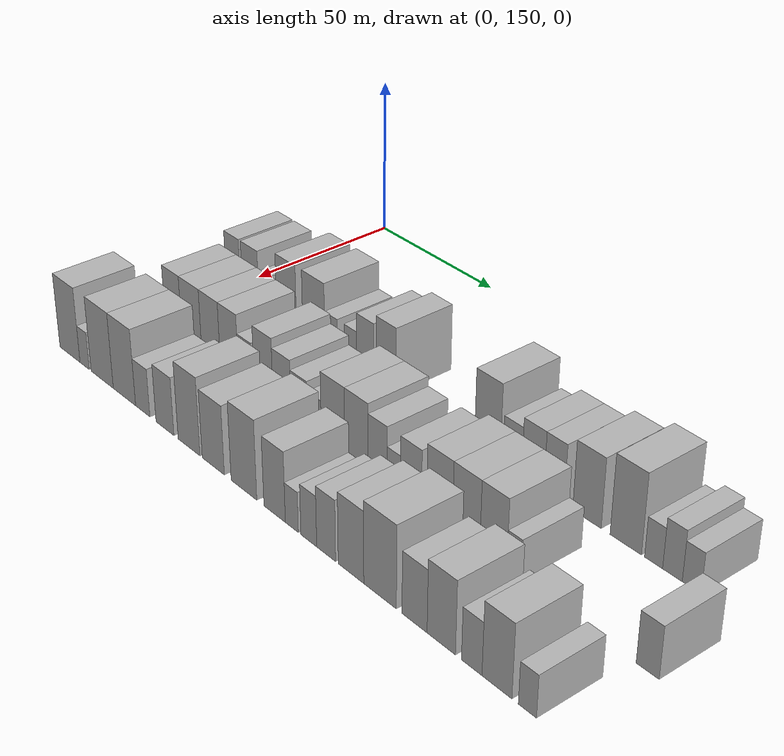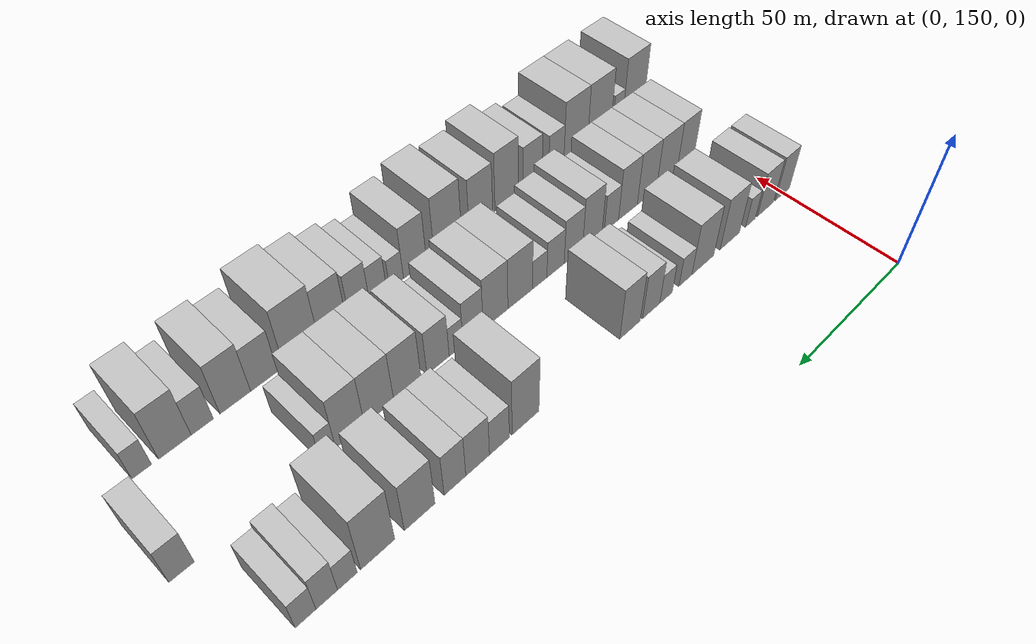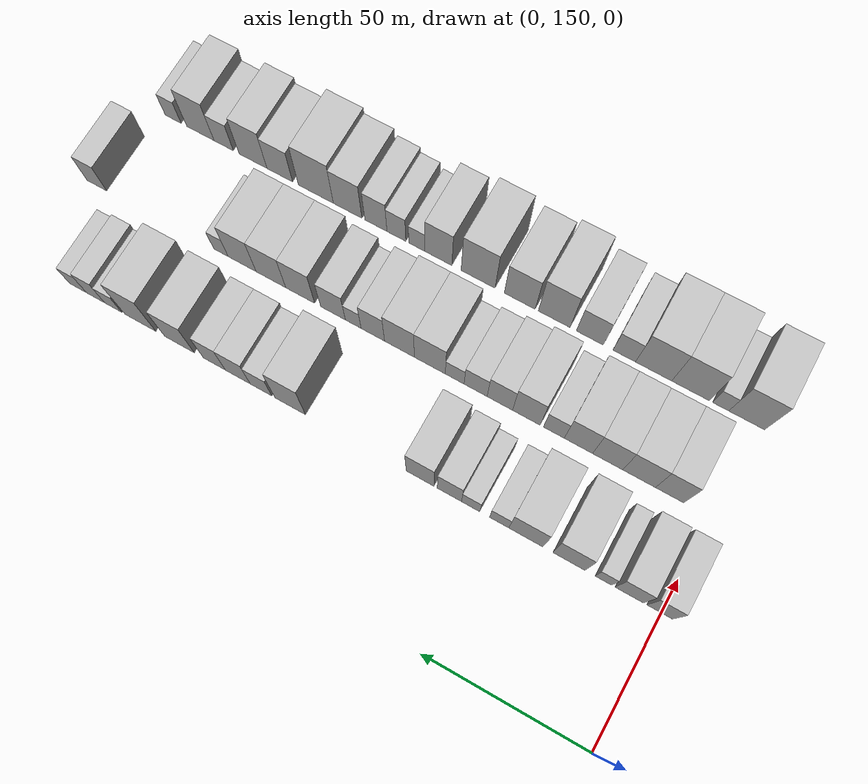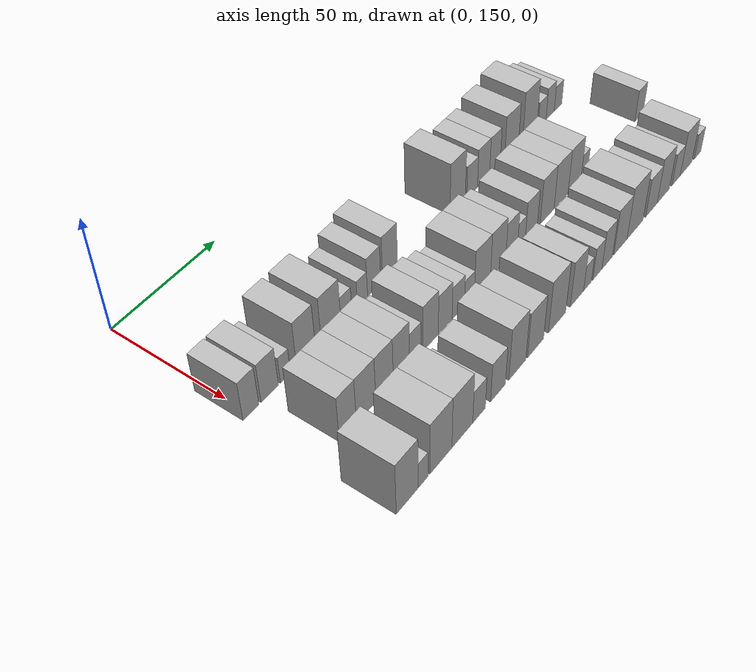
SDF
<sdf version="1.6">
 <world name="default">
  <model name="building_59">
   <static>1</static>
   <pose>50.0000 150.5706 0 0.000000 0.000000 0.000000</pose>
   <link name="link">
    <pose>0 0 9.00 0 0 0</pose>
    <collision name="collision"><geometry><box><size>20.0000 7.4586 18.0000</size></box></geometry></collision>
    <visual name="visual">
     <cast_shadows>0</cast_shadows>
     <geometry><box><size>20.0000 7.4586 18.0000</size></box></geometry>
     <material>
      <script>
       <uri>model://HANNAS_wall/materials/scripts</uri>
       <uri>model://HANNAS_wall/materials/textures</uri>
       <name>vrc/HANNAS_wall</name>
      </script>
     </material>
    </visual>
   </link>
  </model>
  <model name="building_60">
   <static>1</static>
   <pose>50.0000 159.4601 0 0.000000 0.000000 0.000000</pose>
   <link name="link">
    <pose>0 0 9.00 0 0 0</pose>
    <collision name="collision"><geometry><box><size>20.0000 8.3203 18.0000</size></box></geometry></collision>
    <visual name="visual">
     <cast_shadows>0</cast_shadows>
     <geometry><box><size>20.0000 8.3203 18.0000</size></box></geometry>
     <material>
      <script>
       <uri>model://HANNAS_wall/materials/scripts</uri>
       <uri>model://HANNAS_wall/materials/textures</uri>
       <name>vrc/HANNAS_wall</name>
      </script>
     </material>
    </visual>
   </link>
  </model>
  <model name="building_61">
   <static>1</static>
   <pose>50.0000 167.0739 0 0.000000 0.000000 0.000000</pose>
   <link name="link">
    <pose>0 0 6.00 0 0 0</pose>
    <collision name="collision"><geometry><box><size>20.0000 4.9073 12.0000</size></box></geometry></collision>
    <visual name="visual">
     <cast_shadows>0</cast_shadows>
     <geometry><box><size>20.0000 4.9073 12.0000</size></box></geometry>
     <material>
      <script>
       <uri>model://HANNAS_wall/materials/scripts</uri>
       <uri>model://HANNAS_wall/materials/textures</uri>
       <name>vrc/HANNAS_wall</name>
      </script>
     </material>
    </visual>
   </link>
  </model>
  <model name="building_62">
   <static>1</static>
   <pose>50.0000 177.3071 0 0.000000 0.000000 0.000000</pose>
   <link name="link">
    <pose>0 0 10.50 0 0 0</pose>
    <collision name="collision"><geometry><box><size>20.0000 9.5590 21.0000</size></box></geometry></collision>
    <visual name="visual">
     <cast_shadows>0</cast_shadows>
     <geometry><box><size>20.0000 9.5590 21.0000</size></box></geometry>
     <material>
      <script>
       <uri>model://HANNAS_wall/materials/scripts</uri>
       <uri>model://HANNAS_wall/materials/textures</uri>
       <name>vrc/HANNAS_wall</name>
      </script>
     </material>
    </visual>
   </link>
  </model>
  <model name="building_63">
   <static>1</static>
   <pose>50.0000 190.2425 0 0.000000 0.000000 0.000000</pose>
   <link name="link">
    <pose>0 0 10.50 0 0 0</pose>
    <collision name="collision"><geometry><box><size>20.0000 10.3118 21.0000</size></box></geometry></collision>
    <visual name="visual">
     <cast_shadows>0</cast_shadows>
     <geometry><box><size>20.0000 10.3118 21.0000</size></box></geometry>
     <material>
      <script>
       <uri>model://HANNAS_wall/materials/scripts</uri>
       <uri>model://HANNAS_wall/materials/textures</uri>
       <name>vrc/HANNAS_wall</name>
      </script>
     </material>
    </visual>
   </link>
  </model>
  <model name="building_64">
   <static>1</static>
   <pose>50.0000 198.3322 0 0.000000 0.000000 0.000000</pose>
   <link name="link">
    <pose>0 0 6.00 0 0 0</pose>
    <collision name="collision"><geometry><box><size>20.0000 5.8676 12.0000</size></box></geometry></collision>
    <visual name="visual">
     <cast_shadows>0</cast_shadows>
     <geometry><box><size>20.0000 5.8676 12.0000</size></box></geometry>
     <material>
      <script>
       <uri>model://HANNAS_wall/materials/scripts</uri>
       <uri>model://HANNAS_wall/materials/textures</uri>
       <name>vrc/HANNAS_wall</name>
      </script>
     </material>
    </visual>
   </link>
  </model>
  <model name="building_65">
   <static>1</static>
   <pose>50.0000 207.0618 0 0.000000 0.000000 0.000000</pose>
   <link name="link">
    <pose>0 0 6.00 0 0 0</pose>
    <collision name="collision"><geometry><box><size>20.0000 5.5916 12.0000</size></box></geometry></collision>
    <visual name="visual">
     <cast_shadows>0</cast_shadows>
     <geometry><box><size>20.0000 5.5916 12.0000</size></box></geometry>
     <material>
      <script>
       <uri>model://HANNAS_wall/materials/scripts</uri>
       <uri>model://HANNAS_wall/materials/textures</uri>
       <name>vrc/HANNAS_wall</name>
      </script>
     </material>
    </visual>
   </link>
  </model>
  <model name="building_66">
   <static>1</static>
   <pose>50.0000 213.5851 0 0.000000 0.000000 0.000000</pose>
   <link name="link">
    <pose>0 0 9.00 0 0 0</pose>
    <collision name="collision"><geometry><box><size>20.0000 7.4550 18.0000</size></box></geometry></collision>
    <visual name="visual">
     <cast_shadows>0</cast_shadows>
     <geometry><box><size>20.0000 7.4550 18.0000</size></box></geometry>
     <material>
      <script>
       <uri>model://HANNAS_wall/materials/scripts</uri>
       <uri>model://HANNAS_wall/materials/textures</uri>
       <name>vrc/HANNAS_wall</name>
      </script>
     </material>
    </visual>
   </link>
  </model>
  <model name="building_67">
   <static>1</static>
   <pose>50.0000 222.6246 0 0.000000 0.000000 0.000000</pose>
   <link name="link">
    <pose>0 0 10.50 0 0 0</pose>
    <collision name="collision"><geometry><box><size>20.0000 8.6242 21.0000</size></box></geometry></collision>
    <visual name="visual">
     <cast_shadows>0</cast_shadows>
     <geometry><box><size>20.0000 8.6242 21.0000</size></box></geometry>
     <material>
      <script>
       <uri>model://HANNAS_wall/materials/scripts</uri>
       <uri>model://HANNAS_wall/materials/textures</uri>
       <name>vrc/HANNAS_wall</name>
      </script>
     </material>
    </visual>
   </link>
  </model>
  <model name="building_68">
   <static>1</static>
   <pose>50.0000 263.6809 0 0.000000 0.000000 0.000000</pose>
   <link name="link">
    <pose>0 0 12.00 0 0 0</pose>
    <collision name="collision"><geometry><box><size>20.0000 9.8294 24.0000</size></box></geometry></collision>
    <visual name="visual">
     <cast_shadows>0</cast_shadows>
     <geometry><box><size>20.0000 9.8294 24.0000</size></box></geometry>
     <material>
      <script>
       <uri>model://HANNAS_wall/materials/scripts</uri>
       <uri>model://HANNAS_wall/materials/textures</uri>
       <name>vrc/HANNAS_wall</name>
      </script>
     </material>
    </visual>
   </link>
  </model>
  <model name="building_69">
   <static>1</static>
   <pose>50.0000 273.1013 0 0.000000 0.000000 0.000000</pose>
   <link name="link">
    <pose>0 0 7.50 0 0 0</pose>
    <collision name="collision"><geometry><box><size>20.0000 7.0115 15.0000</size></box></geometry></collision>
    <visual name="visual">
     <cast_shadows>0</cast_shadows>
     <geometry><box><size>20.0000 7.0115 15.0000</size></box></geometry>
     <material>
      <script>
       <uri>model://HANNAS_wall/materials/scripts</uri>
       <uri>model://HANNAS_wall/materials/textures</uri>
       <name>vrc/HANNAS_wall</name>
      </script>
     </material>
    </visual>
   </link>
  </model>
  <model name="building_70">
   <static>1</static>
   <pose>50.0000 280.6779 0 0.000000 0.000000 0.000000</pose>
   <link name="link">
    <pose>0 0 9.00 0 0 0</pose>
    <collision name="collision"><geometry><box><size>20.0000 8.1415 18.0000</size></box></geometry></collision>
    <visual name="visual">
     <cast_shadows>0</cast_shadows>
     <geometry><box><size>20.0000 8.1415 18.0000</size></box></geometry>
     <material>
      <script>
       <uri>model://HANNAS_wall/materials/scripts</uri>
       <uri>model://HANNAS_wall/materials/textures</uri>
       <name>vrc/HANNAS_wall</name>
      </script>
     </material>
    </visual>
   </link>
  </model>
  <model name="building_71">
   <static>1</static>
   <pose>50.0000 288.3788 0 0.000000 0.000000 0.000000</pose>
   <link name="link">
    <pose>0 0 9.00 0 0 0</pose>
    <collision name="collision"><geometry><box><size>20.0000 7.2603 18.0000</size></box></geometry></collision>
    <visual name="visual">
     <cast_shadows>0</cast_shadows>
     <geometry><box><size>20.0000 7.2603 18.0000</size></box></geometry>
     <material>
      <script>
       <uri>model://HANNAS_wall/materials/scripts</uri>
       <uri>model://HANNAS_wall/materials/textures</uri>
       <name>vrc/HANNAS_wall</name>
      </script>
     </material>
    </visual>
   </link>
  </model>
  <model name="building_72">
   <static>1</static>
   <pose>50.0000 299.9111 0 0.000000 0.000000 0.000000</pose>
   <link name="link">
    <pose>0 0 10.50 0 0 0</pose>
    <collision name="collision"><geometry><box><size>20.0000 9.8043 21.0000</size></box></geometry></collision>
    <visual name="visual">
     <cast_shadows>0</cast_shadows>
     <geometry><box><size>20.0000 9.8043 21.0000</size></box></geometry>
     <material>
      <script>
       <uri>model://HANNAS_wall/materials/scripts</uri>
       <uri>model://HANNAS_wall/materials/textures</uri>
       <name>vrc/HANNAS_wall</name>
      </script>
     </material>
    </visual>
   </link>
  </model>
  <model name="building_73">
   <static>1</static>
   <pose>50.0000 313.0150 0 0.000000 0.000000 0.000000</pose>
   <link name="link">
    <pose>0 0 12.00 0 0 0</pose>
    <collision name="collision"><geometry><box><size>20.0000 10.4035 24.0000</size></box></geometry></collision>
    <visual name="visual">
     <cast_shadows>0</cast_shadows>
     <geometry><box><size>20.0000 10.4035 24.0000</size></box></geometry>
     <material>
      <script>
       <uri>model://HANNAS_wall/materials/scripts</uri>
       <uri>model://HANNAS_wall/materials/textures</uri>
       <name>vrc/HANNAS_wall</name>
      </script>
     </material>
    </visual>
   </link>
  </model>
  <model name="building_74">
   <static>1</static>
   <pose>50.0000 322.1106 0 0.000000 0.000000 0.000000</pose>
   <link name="link">
    <pose>0 0 6.00 0 0 0</pose>
    <collision name="collision"><geometry><box><size>20.0000 5.7877 12.0000</size></box></geometry></collision>
    <visual name="visual">
     <cast_shadows>0</cast_shadows>
     <geometry><box><size>20.0000 5.7877 12.0000</size></box></geometry>
     <material>
      <script>
       <uri>model://HANNAS_wall/materials/scripts</uri>
       <uri>model://HANNAS_wall/materials/textures</uri>
       <name>vrc/HANNAS_wall</name>
      </script>
     </material>
    </visual>
   </link>
  </model>
  <model name="building_75">
   <static>1</static>
   <pose>50.0000 328.1053 0 0.000000 0.000000 0.000000</pose>
   <link name="link">
    <pose>0 0 7.50 0 0 0</pose>
    <collision name="collision"><geometry><box><size>20.0000 6.2017 15.0000</size></box></geometry></collision>
    <visual name="visual">
     <cast_shadows>0</cast_shadows>
     <geometry><box><size>20.0000 6.2017 15.0000</size></box></geometry>
     <material>
      <script>
       <uri>model://HANNAS_wall/materials/scripts</uri>
       <uri>model://HANNAS_wall/materials/textures</uri>
       <name>vrc/HANNAS_wall</name>
      </script>
     </material>
    </visual>
   </link>
  </model>
  <model name="building_76">
   <static>1</static>
   <pose>50.0000 334.1300 0 0.000000 0.000000 0.000000</pose>
   <link name="link">
    <pose>0 0 6.00 0 0 0</pose>
    <collision name="collision"><geometry><box><size>20.0000 5.8477 12.0000</size></box></geometry></collision>
    <visual name="visual">
     <cast_shadows>0</cast_shadows>
     <geometry><box><size>20.0000 5.8477 12.0000</size></box></geometry>
     <material>
      <script>
       <uri>model://HANNAS_wall/materials/scripts</uri>
       <uri>model://HANNAS_wall/materials/textures</uri>
       <name>vrc/HANNAS_wall</name>
      </script>
     </material>
    </visual>
   </link>
  </model>
  <model name="building_134">
   <static>1</static>
   <pose>79.0000 161.8106 0 0.000000 0.000000 0.000000</pose>
   <link name="link">
    <pose>0 0 10.50 0 0 0</pose>
    <collision name="collision"><geometry><box><size>20.0000 8.4698 21.0000</size></box></geometry></collision>
    <visual name="visual">
     <cast_shadows>0</cast_shadows>
     <geometry><box><size>20.0000 8.4698 21.0000</size></box></geometry>
     <material>
      <script>
       <uri>model://HANNAS_wall/materials/scripts</uri>
       <uri>model://HANNAS_wall/materials/textures</uri>
       <name>vrc/HANNAS_wall</name>
      </script>
     </material>
    </visual>
   </link>
  </model>
  <model name="building_135">
   <static>1</static>
   <pose>79.0000 170.9830 0 0.000000 0.000000 0.000000</pose>
   <link name="link">
    <pose>0 0 10.50 0 0 0</pose>
    <collision name="collision"><geometry><box><size>20.0000 9.8750 21.0000</size></box></geometry></collision>
    <visual name="visual">
     <cast_shadows>0</cast_shadows>
     <geometry><box><size>20.0000 9.8750 21.0000</size></box></geometry>
     <material>
      <script>
       <uri>model://HANNAS_wall/materials/scripts</uri>
       <uri>model://HANNAS_wall/materials/textures</uri>
       <name>vrc/HANNAS_wall</name>
      </script>
     </material>
    </visual>
   </link>
  </model>
  <model name="building_136">
   <static>1</static>
   <pose>79.0000 180.4971 0 0.000000 0.000000 0.000000</pose>
   <link name="link">
    <pose>0 0 10.50 0 0 0</pose>
    <collision name="collision"><geometry><box><size>20.0000 9.1532 21.0000</size></box></geometry></collision>
    <visual name="visual">
     <cast_shadows>0</cast_shadows>
     <geometry><box><size>20.0000 9.1532 21.0000</size></box></geometry>
     <material>
      <script>
       <uri>model://HANNAS_wall/materials/scripts</uri>
       <uri>model://HANNAS_wall/materials/textures</uri>
       <name>vrc/HANNAS_wall</name>
      </script>
     </material>
    </visual>
   </link>
  </model>
  <model name="building_137">
   <static>1</static>
   <pose>79.0000 189.4248 0 0.000000 0.000000 0.000000</pose>
   <link name="link">
    <pose>0 0 10.50 0 0 0</pose>
    <collision name="collision"><geometry><box><size>20.0000 8.7023 21.0000</size></box></geometry></collision>
    <visual name="visual">
     <cast_shadows>0</cast_shadows>
     <geometry><box><size>20.0000 8.7023 21.0000</size></box></geometry>
     <material>
      <script>
       <uri>model://HANNAS_wall/materials/scripts</uri>
       <uri>model://HANNAS_wall/materials/textures</uri>
       <name>vrc/HANNAS_wall</name>
      </script>
     </material>
    </visual>
   </link>
  </model>
  <model name="building_138">
   <static>1</static>
   <pose>79.0000 196.9933 0 0.000000 0.000000 0.000000</pose>
   <link name="link">
    <pose>0 0 7.50 0 0 0</pose>
    <collision name="collision"><geometry><box><size>20.0000 6.4346 15.0000</size></box></geometry></collision>
    <visual name="visual">
     <cast_shadows>0</cast_shadows>
     <geometry><box><size>20.0000 6.4346 15.0000</size></box></geometry>
     <material>
      <script>
       <uri>model://HANNAS_wall/materials/scripts</uri>
       <uri>model://HANNAS_wall/materials/textures</uri>
       <name>vrc/HANNAS_wall</name>
      </script>
     </material>
    </visual>
   </link>
  </model>
  <model name="building_139">
   <static>1</static>
   <pose>79.0000 205.5031 0 0.000000 0.000000 0.000000</pose>
   <link name="link">
    <pose>0 0 10.50 0 0 0</pose>
    <collision name="collision"><geometry><box><size>20.0000 8.5851 21.0000</size></box></geometry></collision>
    <visual name="visual">
     <cast_shadows>0</cast_shadows>
     <geometry><box><size>20.0000 8.5851 21.0000</size></box></geometry>
     <material>
      <script>
       <uri>model://HANNAS_wall/materials/scripts</uri>
       <uri>model://HANNAS_wall/materials/textures</uri>
       <name>vrc/HANNAS_wall</name>
      </script>
     </material>
    </visual>
   </link>
  </model>
  <model name="building_140">
   <static>1</static>
   <pose>79.0000 213.7783 0 0.000000 0.000000 0.000000</pose>
   <link name="link">
    <pose>0 0 9.00 0 0 0</pose>
    <collision name="collision"><geometry><box><size>20.0000 7.9654 18.0000</size></box></geometry></collision>
    <visual name="visual">
     <cast_shadows>0</cast_shadows>
     <geometry><box><size>20.0000 7.9654 18.0000</size></box></geometry>
     <material>
      <script>
       <uri>model://HANNAS_wall/materials/scripts</uri>
       <uri>model://HANNAS_wall/materials/textures</uri>
       <name>vrc/HANNAS_wall</name>
      </script>
     </material>
    </visual>
   </link>
  </model>
  <model name="building_141">
   <static>1</static>
   <pose>79.0000 221.4005 0 0.000000 0.000000 0.000000</pose>
   <link name="link">
    <pose>0 0 7.50 0 0 0</pose>
    <collision name="collision"><geometry><box><size>20.0000 7.2789 15.0000</size></box></geometry></collision>
    <visual name="visual">
     <cast_shadows>0</cast_shadows>
     <geometry><box><size>20.0000 7.2789 15.0000</size></box></geometry>
     <material>
      <script>
       <uri>model://HANNAS_wall/materials/scripts</uri>
       <uri>model://HANNAS_wall/materials/textures</uri>
       <name>vrc/HANNAS_wall</name>
      </script>
     </material>
    </visual>
   </link>
  </model>
  <model name="building_142">
   <static>1</static>
   <pose>79.0000 228.0081 0 0.000000 0.000000 0.000000</pose>
   <link name="link">
    <pose>0 0 6.00 0 0 0</pose>
    <collision name="collision"><geometry><box><size>20.0000 5.9363 12.0000</size></box></geometry></collision>
    <visual name="visual">
     <cast_shadows>0</cast_shadows>
     <geometry><box><size>20.0000 5.9363 12.0000</size></box></geometry>
     <material>
      <script>
       <uri>model://HANNAS_wall/materials/scripts</uri>
       <uri>model://HANNAS_wall/materials/textures</uri>
       <name>vrc/HANNAS_wall</name>
      </script>
     </material>
    </visual>
   </link>
  </model>
  <model name="building_143">
   <static>1</static>
   <pose>79.0000 235.9050 0 0.000000 0.000000 0.000000</pose>
   <link name="link">
    <pose>0 0 10.50 0 0 0</pose>
    <collision name="collision"><geometry><box><size>20.0000 9.8575 21.0000</size></box></geometry></collision>
    <visual name="visual">
     <cast_shadows>0</cast_shadows>
     <geometry><box><size>20.0000 9.8575 21.0000</size></box></geometry>
     <material>
      <script>
       <uri>model://HANNAS_wall/materials/scripts</uri>
       <uri>model://HANNAS_wall/materials/textures</uri>
       <name>vrc/HANNAS_wall</name>
      </script>
     </material>
    </visual>
   </link>
  </model>
  <model name="building_144">
   <static>1</static>
   <pose>79.0000 245.6379 0 0.000000 0.000000 0.000000</pose>
   <link name="link">
    <pose>0 0 10.50 0 0 0</pose>
    <collision name="collision"><geometry><box><size>20.0000 9.6082 21.0000</size></box></geometry></collision>
    <visual name="visual">
     <cast_shadows>0</cast_shadows>
     <geometry><box><size>20.0000 9.6082 21.0000</size></box></geometry>
     <material>
      <script>
       <uri>model://HANNAS_wall/materials/scripts</uri>
       <uri>model://HANNAS_wall/materials/textures</uri>
       <name>vrc/HANNAS_wall</name>
      </script>
     </material>
    </visual>
   </link>
  </model>
  <model name="building_145">
   <static>1</static>
   <pose>79.0000 254.2408 0 0.000000 0.000000 0.000000</pose>
   <link name="link">
    <pose>0 0 9.00 0 0 0</pose>
    <collision name="collision"><geometry><box><size>20.0000 7.5978 18.0000</size></box></geometry></collision>
    <visual name="visual">
     <cast_shadows>0</cast_shadows>
     <geometry><box><size>20.0000 7.5978 18.0000</size></box></geometry>
     <material>
      <script>
       <uri>model://HANNAS_wall/materials/scripts</uri>
       <uri>model://HANNAS_wall/materials/textures</uri>
       <name>vrc/HANNAS_wall</name>
      </script>
     </material>
    </visual>
   </link>
  </model>
  <model name="building_146">
   <static>1</static>
   <pose>79.0000 260.5977 0 0.000000 0.000000 0.000000</pose>
   <link name="link">
    <pose>0 0 6.00 0 0 0</pose>
    <collision name="collision"><geometry><box><size>20.0000 5.1160 12.0000</size></box></geometry></collision>
    <visual name="visual">
     <cast_shadows>0</cast_shadows>
     <geometry><box><size>20.0000 5.1160 12.0000</size></box></geometry>
     <material>
      <script>
       <uri>model://HANNAS_wall/materials/scripts</uri>
       <uri>model://HANNAS_wall/materials/textures</uri>
       <name>vrc/HANNAS_wall</name>
      </script>
     </material>
    </visual>
   </link>
  </model>
  <model name="building_147">
   <static>1</static>
   <pose>79.0000 267.2028 0 0.000000 0.000000 0.000000</pose>
   <link name="link">
    <pose>0 0 9.00 0 0 0</pose>
    <collision name="collision"><geometry><box><size>20.0000 8.0941 18.0000</size></box></geometry></collision>
    <visual name="visual">
     <cast_shadows>0</cast_shadows>
     <geometry><box><size>20.0000 8.0941 18.0000</size></box></geometry>
     <material>
      <script>
       <uri>model://HANNAS_wall/materials/scripts</uri>
       <uri>model://HANNAS_wall/materials/textures</uri>
       <name>vrc/HANNAS_wall</name>
      </script>
     </material>
    </visual>
   </link>
  </model>
  <model name="building_148">
   <static>1</static>
   <pose>79.0000 278.0204 0 0.000000 0.000000 0.000000</pose>
   <link name="link">
    <pose>0 0 10.50 0 0 0</pose>
    <collision name="collision"><geometry><box><size>20.0000 9.5412 21.0000</size></box></geometry></collision>
    <visual name="visual">
     <cast_shadows>0</cast_shadows>
     <geometry><box><size>20.0000 9.5412 21.0000</size></box></geometry>
     <material>
      <script>
       <uri>model://HANNAS_wall/materials/scripts</uri>
       <uri>model://HANNAS_wall/materials/textures</uri>
       <name>vrc/HANNAS_wall</name>
      </script>
     </material>
    </visual>
   </link>
  </model>
  <model name="building_149">
   <static>1</static>
   <pose>79.0000 287.7300 0 0.000000 0.000000 0.000000</pose>
   <link name="link">
    <pose>0 0 10.50 0 0 0</pose>
    <collision name="collision"><geometry><box><size>20.0000 9.8781 21.0000</size></box></geometry></collision>
    <visual name="visual">
     <cast_shadows>0</cast_shadows>
     <geometry><box><size>20.0000 9.8781 21.0000</size></box></geometry>
     <material>
      <script>
       <uri>model://HANNAS_wall/materials/scripts</uri>
       <uri>model://HANNAS_wall/materials/textures</uri>
       <name>vrc/HANNAS_wall</name>
      </script>
     </material>
    </visual>
   </link>
  </model>
  <model name="building_150">
   <static>1</static>
   <pose>79.0000 297.3779 0 0.000000 0.000000 0.000000</pose>
   <link name="link">
    <pose>0 0 10.50 0 0 0</pose>
    <collision name="collision"><geometry><box><size>20.0000 9.4176 21.0000</size></box></geometry></collision>
    <visual name="visual">
     <cast_shadows>0</cast_shadows>
     <geometry><box><size>20.0000 9.4176 21.0000</size></box></geometry>
     <material>
      <script>
       <uri>model://HANNAS_wall/materials/scripts</uri>
       <uri>model://HANNAS_wall/materials/textures</uri>
       <name>vrc/HANNAS_wall</name>
      </script>
     </material>
    </visual>
   </link>
  </model>
  <model name="building_151">
   <static>1</static>
   <pose>79.0000 304.5370 0 0.000000 0.000000 0.000000</pose>
   <link name="link">
    <pose>0 0 6.00 0 0 0</pose>
    <collision name="collision"><geometry><box><size>20.0000 4.9007 12.0000</size></box></geometry></collision>
    <visual name="visual">
     <cast_shadows>0</cast_shadows>
     <geometry><box><size>20.0000 4.9007 12.0000</size></box></geometry>
     <material>
      <script>
       <uri>model://HANNAS_wall/materials/scripts</uri>
       <uri>model://HANNAS_wall/materials/textures</uri>
       <name>vrc/HANNAS_wall</name>
      </script>
     </material>
    </visual>
   </link>
  </model>
  <model name="building_152">
   <static>1</static>
   <pose>79.0000 347.3033 0 0.000000 0.000000 0.000000</pose>
   <link name="link">
    <pose>0 0 7.50 0 0 0</pose>
    <collision name="collision"><geometry><box><size>20.0000 6.8773 15.0000</size></box></geometry></collision>
    <visual name="visual">
     <cast_shadows>0</cast_shadows>
     <geometry><box><size>20.0000 6.8773 15.0000</size></box></geometry>
     <material>
      <script>
       <uri>model://HANNAS_wall/materials/scripts</uri>
       <uri>model://HANNAS_wall/materials/textures</uri>
       <name>vrc/HANNAS_wall</name>
      </script>
     </material>
    </visual>
   </link>
  </model>
  <model name="building_207">
   <static>1</static>
   <pose>108.0000 152.4227 0 0.000000 0.000000 0.000000</pose>
   <link name="link">
    <pose>0 0 12.00 0 0 0</pose>
    <collision name="collision"><geometry><box><size>20.0000 10.8448 24.0000</size></box></geometry></collision>
    <visual name="visual">
     <cast_shadows>0</cast_shadows>
     <geometry><box><size>20.0000 10.8448 24.0000</size></box></geometry>
     <material>
      <script>
       <uri>model://HANNAS_wall/materials/scripts</uri>
       <uri>model://HANNAS_wall/materials/textures</uri>
       <name>vrc/HANNAS_wall</name>
      </script>
     </material>
    </visual>
   </link>
  </model>
  <model name="building_208">
   <static>1</static>
   <pose>108.0000 160.3141 0 0.000000 0.000000 0.000000</pose>
   <link name="link">
    <pose>0 0 6.00 0 0 0</pose>
    <collision name="collision"><geometry><box><size>20.0000 4.9380 12.0000</size></box></geometry></collision>
    <visual name="visual">
     <cast_shadows>0</cast_shadows>
     <geometry><box><size>20.0000 4.9380 12.0000</size></box></geometry>
     <material>
      <script>
       <uri>model://HANNAS_wall/materials/scripts</uri>
       <uri>model://HANNAS_wall/materials/textures</uri>
       <name>vrc/HANNAS_wall</name>
      </script>
     </material>
    </visual>
   </link>
  </model>
  <model name="building_209">
   <static>1</static>
   <pose>108.0000 169.5252 0 0.000000 0.000000 0.000000</pose>
   <link name="link">
    <pose>0 0 12.00 0 0 0</pose>
    <collision name="collision"><geometry><box><size>20.0000 11.4842 24.0000</size></box></geometry></collision>
    <visual name="visual">
     <cast_shadows>0</cast_shadows>
     <geometry><box><size>20.0000 11.4842 24.0000</size></box></geometry>
     <material>
      <script>
       <uri>model://HANNAS_wall/materials/scripts</uri>
       <uri>model://HANNAS_wall/materials/textures</uri>
       <name>vrc/HANNAS_wall</name>
      </script>
     </material>
    </visual>
   </link>
  </model>
  <model name="building_210">
   <static>1</static>
   <pose>108.0000 180.8768 0 0.000000 0.000000 0.000000</pose>
   <link name="link">
    <pose>0 0 12.00 0 0 0</pose>
    <collision name="collision"><geometry><box><size>20.0000 11.2190 24.0000</size></box></geometry></collision>
    <visual name="visual">
     <cast_shadows>0</cast_shadows>
     <geometry><box><size>20.0000 11.2190 24.0000</size></box></geometry>
     <material>
      <script>
       <uri>model://HANNAS_wall/materials/scripts</uri>
       <uri>model://HANNAS_wall/materials/textures</uri>
       <name>vrc/HANNAS_wall</name>
      </script>
     </material>
    </visual>
   </link>
  </model>
  <model name="building_211">
   <static>1</static>
   <pose>108.0000 189.9929 0 0.000000 0.000000 0.000000</pose>
   <link name="link">
    <pose>0 0 7.50 0 0 0</pose>
    <collision name="collision"><geometry><box><size>20.0000 7.0132 15.0000</size></box></geometry></collision>
    <visual name="visual">
     <cast_shadows>0</cast_shadows>
     <geometry><box><size>20.0000 7.0132 15.0000</size></box></geometry>
     <material>
      <script>
       <uri>model://HANNAS_wall/materials/scripts</uri>
       <uri>model://HANNAS_wall/materials/textures</uri>
       <name>vrc/HANNAS_wall</name>
      </script>
     </material>
    </visual>
   </link>
  </model>
  <model name="building_212">
   <static>1</static>
   <pose>108.0000 200.7521 0 0.000000 0.000000 0.000000</pose>
   <link name="link">
    <pose>0 0 9.00 0 0 0</pose>
    <collision name="collision"><geometry><box><size>20.0000 8.5053 18.0000</size></box></geometry></collision>
    <visual name="visual">
     <cast_shadows>0</cast_shadows>
     <geometry><box><size>20.0000 8.5053 18.0000</size></box></geometry>
     <material>
      <script>
       <uri>model://HANNAS_wall/materials/scripts</uri>
       <uri>model://HANNAS_wall/materials/textures</uri>
       <name>vrc/HANNAS_wall</name>
      </script>
     </material>
    </visual>
   </link>
  </model>
  <model name="building_213">
   <static>1</static>
   <pose>108.0000 212.0391 0 0.000000 0.000000 0.000000</pose>
   <link name="link">
    <pose>0 0 12.00 0 0 0</pose>
    <collision name="collision"><geometry><box><size>20.0000 10.0687 24.0000</size></box></geometry></collision>
    <visual name="visual">
     <cast_shadows>0</cast_shadows>
     <geometry><box><size>20.0000 10.0687 24.0000</size></box></geometry>
     <material>
      <script>
       <uri>model://HANNAS_wall/materials/scripts</uri>
       <uri>model://HANNAS_wall/materials/textures</uri>
       <name>vrc/HANNAS_wall</name>
      </script>
     </material>
    </visual>
   </link>
  </model>
  <model name="building_214">
   <static>1</static>
   <pose>108.0000 223.0161 0 0.000000 0.000000 0.000000</pose>
   <link name="link">
    <pose>0 0 10.50 0 0 0</pose>
    <collision name="collision"><geometry><box><size>20.0000 9.8852 21.0000</size></box></geometry></collision>
    <visual name="visual">
     <cast_shadows>0</cast_shadows>
     <geometry><box><size>20.0000 9.8852 21.0000</size></box></geometry>
     <material>
      <script>
       <uri>model://HANNAS_wall/materials/scripts</uri>
       <uri>model://HANNAS_wall/materials/textures</uri>
       <name>vrc/HANNAS_wall</name>
      </script>
     </material>
    </visual>
   </link>
  </model>
  <model name="building_215">
   <static>1</static>
   <pose>108.0000 236.4652 0 0.000000 0.000000 0.000000</pose>
   <link name="link">
    <pose>0 0 12.00 0 0 0</pose>
    <collision name="collision"><geometry><box><size>20.0000 11.0131 24.0000</size></box></geometry></collision>
    <visual name="visual">
     <cast_shadows>0</cast_shadows>
     <geometry><box><size>20.0000 11.0131 24.0000</size></box></geometry>
     <material>
      <script>
       <uri>model://HANNAS_wall/materials/scripts</uri>
       <uri>model://HANNAS_wall/materials/textures</uri>
       <name>vrc/HANNAS_wall</name>
      </script>
     </material>
    </visual>
   </link>
  </model>
  <model name="building_216">
   <static>1</static>
   <pose>108.0000 249.3993 0 0.000000 0.000000 0.000000</pose>
   <link name="link">
    <pose>0 0 10.50 0 0 0</pose>
    <collision name="collision"><geometry><box><size>20.0000 8.8551 21.0000</size></box></geometry></collision>
    <visual name="visual">
     <cast_shadows>0</cast_shadows>
     <geometry><box><size>20.0000 8.8551 21.0000</size></box></geometry>
     <material>
      <script>
       <uri>model://HANNAS_wall/materials/scripts</uri>
       <uri>model://HANNAS_wall/materials/textures</uri>
       <name>vrc/HANNAS_wall</name>
      </script>
     </material>
    </visual>
   </link>
  </model>
  <model name="building_217">
   <static>1</static>
   <pose>108.0000 256.4557 0 0.000000 0.000000 0.000000</pose>
   <link name="link">
    <pose>0 0 6.00 0 0 0</pose>
    <collision name="collision"><geometry><box><size>20.0000 5.2577 12.0000</size></box></geometry></collision>
    <visual name="visual">
     <cast_shadows>0</cast_shadows>
     <geometry><box><size>20.0000 5.2577 12.0000</size></box></geometry>
     <material>
      <script>
       <uri>model://HANNAS_wall/materials/scripts</uri>
       <uri>model://HANNAS_wall/materials/textures</uri>
       <name>vrc/HANNAS_wall</name>
      </script>
     </material>
    </visual>
   </link>
  </model>
  <model name="building_218">
   <static>1</static>
   <pose>108.0000 263.2169 0 0.000000 0.000000 0.000000</pose>
   <link name="link">
    <pose>0 0 7.50 0 0 0</pose>
    <collision name="collision"><geometry><box><size>20.0000 6.2646 15.0000</size></box></geometry></collision>
    <visual name="visual">
     <cast_shadows>0</cast_shadows>
     <geometry><box><size>20.0000 6.2646 15.0000</size></box></geometry>
     <material>
      <script>
       <uri>model://HANNAS_wall/materials/scripts</uri>
       <uri>model://HANNAS_wall/materials/textures</uri>
       <name>vrc/HANNAS_wall</name>
      </script>
     </material>
    </visual>
   </link>
  </model>
  <model name="building_219">
   <static>1</static>
   <pose>108.0000 270.0268 0 0.000000 0.000000 0.000000</pose>
   <link name="link">
    <pose>0 0 9.00 0 0 0</pose>
    <collision name="collision"><geometry><box><size>20.0000 7.3552 18.0000</size></box></geometry></collision>
    <visual name="visual">
     <cast_shadows>0</cast_shadows>
     <geometry><box><size>20.0000 7.3552 18.0000</size></box></geometry>
     <material>
      <script>
       <uri>model://HANNAS_wall/materials/scripts</uri>
       <uri>model://HANNAS_wall/materials/textures</uri>
       <name>vrc/HANNAS_wall</name>
      </script>
     </material>
    </visual>
   </link>
  </model>
  <model name="building_220">
   <static>1</static>
   <pose>108.0000 279.5091 0 0.000000 0.000000 0.000000</pose>
   <link name="link">
    <pose>0 0 10.50 0 0 0</pose>
    <collision name="collision"><geometry><box><size>20.0000 9.6095 21.0000</size></box></geometry></collision>
    <visual name="visual">
     <cast_shadows>0</cast_shadows>
     <geometry><box><size>20.0000 9.6095 21.0000</size></box></geometry>
     <material>
      <script>
       <uri>model://HANNAS_wall/materials/scripts</uri>
       <uri>model://HANNAS_wall/materials/textures</uri>
       <name>vrc/HANNAS_wall</name>
      </script>
     </material>
    </visual>
   </link>
  </model>
  <model name="building_221">
   <static>1</static>
   <pose>108.0000 290.2352 0 0.000000 0.000000 0.000000</pose>
   <link name="link">
    <pose>0 0 12.00 0 0 0</pose>
    <collision name="collision"><geometry><box><size>20.0000 11.8427 24.0000</size></box></geometry></collision>
    <visual name="visual">
     <cast_shadows>0</cast_shadows>
     <geometry><box><size>20.0000 11.8427 24.0000</size></box></geometry>
     <material>
      <script>
       <uri>model://HANNAS_wall/materials/scripts</uri>
       <uri>model://HANNAS_wall/materials/textures</uri>
       <name>vrc/HANNAS_wall</name>
      </script>
     </material>
    </visual>
   </link>
  </model>
  <model name="building_222">
   <static>1</static>
   <pose>108.0000 302.5423 0 0.000000 0.000000 0.000000</pose>
   <link name="link">
    <pose>0 0 9.00 0 0 0</pose>
    <collision name="collision"><geometry><box><size>20.0000 8.7715 18.0000</size></box></geometry></collision>
    <visual name="visual">
     <cast_shadows>0</cast_shadows>
     <geometry><box><size>20.0000 8.7715 18.0000</size></box></geometry>
     <material>
      <script>
       <uri>model://HANNAS_wall/materials/scripts</uri>
       <uri>model://HANNAS_wall/materials/textures</uri>
       <name>vrc/HANNAS_wall</name>
      </script>
     </material>
    </visual>
   </link>
  </model>
  <model name="building_223">
   <static>1</static>
   <pose>108.0000 311.7359 0 0.000000 0.000000 0.000000</pose>
   <link name="link">
    <pose>0 0 10.50 0 0 0</pose>
    <collision name="collision"><geometry><box><size>20.0000 9.6157 21.0000</size></box></geometry></collision>
    <visual name="visual">
     <cast_shadows>0</cast_shadows>
     <geometry><box><size>20.0000 9.6157 21.0000</size></box></geometry>
     <material>
      <script>
       <uri>model://HANNAS_wall/materials/scripts</uri>
       <uri>model://HANNAS_wall/materials/textures</uri>
       <name>vrc/HANNAS_wall</name>
      </script>
     </material>
    </visual>
   </link>
  </model>
  <model name="building_224">
   <static>1</static>
   <pose>108.0000 321.8968 0 0.000000 0.000000 0.000000</pose>
   <link name="link">
    <pose>0 0 7.50 0 0 0</pose>
    <collision name="collision"><geometry><box><size>20.0000 6.7060 15.0000</size></box></geometry></collision>
    <visual name="visual">
     <cast_shadows>0</cast_shadows>
     <geometry><box><size>20.0000 6.7060 15.0000</size></box></geometry>
     <material>
      <script>
       <uri>model://HANNAS_wall/materials/scripts</uri>
       <uri>model://HANNAS_wall/materials/textures</uri>
       <name>vrc/HANNAS_wall</name>
      </script>
     </material>
    </visual>
   </link>
  </model>
  <model name="building_225">
   <static>1</static>
   <pose>108.0000 330.0277 0 0.000000 0.000000 0.000000</pose>
   <link name="link">
    <pose>0 0 10.50 0 0 0</pose>
    <collision name="collision"><geometry><box><size>20.0000 9.5558 21.0000</size></box></geometry></collision>
    <visual name="visual">
     <cast_shadows>0</cast_shadows>
     <geometry><box><size>20.0000 9.5558 21.0000</size></box></geometry>
     <material>
      <script>
       <uri>model://HANNAS_wall/materials/scripts</uri>
       <uri>model://HANNAS_wall/materials/textures</uri>
       <name>vrc/HANNAS_wall</name>
      </script>
     </material>
    </visual>
   </link>
  </model>
  <model name="building_226">
   <static>1</static>
   <pose>108.0000 339.6056 0 0.000000 0.000000 0.000000</pose>
   <link name="link">
    <pose>0 0 6.00 0 0 0</pose>
    <collision name="collision"><geometry><box><size>20.0000 5.5999 12.0000</size></box></geometry></collision>
    <visual name="visual">
     <cast_shadows>0</cast_shadows>
     <geometry><box><size>20.0000 5.5999 12.0000</size></box></geometry>
     <material>
      <script>
       <uri>model://HANNAS_wall/materials/scripts</uri>
       <uri>model://HANNAS_wall/materials/textures</uri>
       <name>vrc/HANNAS_wall</name>
      </script>
     </material>
    </visual>
   </link>
  </model>
 </world>
</sdf>
